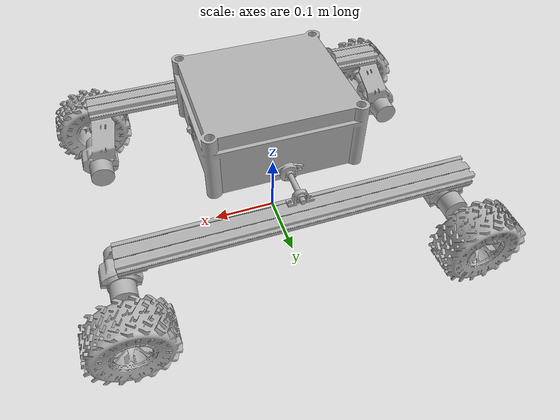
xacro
<?xml version="1.0" ?>
<robot name="navrover" xmlns:xacro="http://www.ros.org/wiki/xacro">

<xacro:include filename="$(find navrover_description)/urdf/materials.xacro" />
<xacro:include filename="$(find navrover_description)/urdf/navrover.trans" />
<xacro:include filename="$(find navrover_description)/urdf/navrover.gazebo" />
<xacro:include filename="$(find navrover_control)/description/ros2_control.xacro" />

<link name="base_link">
  <inertial>
    <origin xyz="0.009504858866791937 -0.002270281447422617 0.1951992873261795" rpy="0 0 0"/>
    <mass value="0.9518707421963939"/>
    <inertia ixx="0.005453" iyy="0.006479" izz="0.009221" ixy="8e-06" iyz="-2.3e-05" ixz="1.9e-05"/>
  </inertial>
  <visual>
    <origin xyz="0 0 0" rpy="0 0 0"/>
    <geometry>
      <mesh filename="file://$(find navrover_description)/meshes/base_link.stl" scale="0.001 0.001 0.001"/>
    </geometry>
    <material name="silver"/>
  </visual>
  <collision>
    <origin xyz="0 0 0" rpy="0 0 0"/>
    <geometry>
      <mesh filename="file://$(find navrover_description)/meshes/base_link.stl" scale="0.001 0.001 0.001"/>
    </geometry>
  </collision>
</link>

<link name="left_front_motor_1">
  <inertial>
    <origin xyz="0.0008910668948025613 -0.03289510779057839 -0.06734484283672734" rpy="0 0 0"/>
    <mass value="0.8027582890758764"/>
    <inertia ixx="0.000756" iyy="0.000377" izz="0.000565" ixy="1.3e-05" iyz="-4.8e-05" ixz="6.6e-05"/>
  </inertial>
  <visual>
    <origin xyz="-0.259316 -0.15026 -0.142476" rpy="0 0 0"/>
    <geometry>
      <mesh filename="file://$(find navrover_description)/meshes/left_front_motor_1.stl" scale="0.001 0.001 0.001"/>
    </geometry>
    <material name="silver"/>
  </visual>
  <collision>
    <origin xyz="-0.259316 -0.15026 -0.142476" rpy="0 0 0"/>
    <geometry>
      <mesh filename="file://$(find navrover_description)/meshes/left_front_motor_1.stl" scale="0.001 0.001 0.001"/>
    </geometry>
  </collision>
</link>

<link name="right_rear_motor_1">
  <inertial>
    <origin xyz="-0.000890443487994802 0.032894483907466535 -0.06734484283672845" rpy="0 0 0"/>
    <mass value="0.8027582890758764"/>
    <inertia ixx="0.000756" iyy="0.000377" izz="0.000565" ixy="1.3e-05" iyz="4.8e-05" ixz="-6.6e-05"/>
  </inertial>
  <visual>
    <origin xyz="0.240684 0.156507 -0.142476" rpy="0 0 0"/>
    <geometry>
      <mesh filename="file://$(find navrover_description)/meshes/right_rear_motor_1.stl" scale="0.001 0.001 0.001"/>
    </geometry>
    <material name="silver"/>
  </visual>
  <collision>
    <origin xyz="0.240684 0.156507 -0.142476" rpy="0 0 0"/>
    <geometry>
      <mesh filename="file://$(find navrover_description)/meshes/right_rear_motor_1.stl" scale="0.001 0.001 0.001"/>
    </geometry>
  </collision>
</link>

<link name="right_front_motor_1">
  <inertial>
    <origin xyz="0.0007239698752933288 0.032862866662436055 -0.06750730161649608" rpy="0 0 0"/>
    <mass value="0.8025906335235503"/>
    <inertia ixx="0.000756" iyy="0.000377" izz="0.000564" ixy="-1.3e-05" iyz="4.8e-05" ixz="6.5e-05"/>
  </inertial>
  <visual>
    <origin xyz="-0.259316 0.156507 -0.142476" rpy="0 0 0"/>
    <geometry>
      <mesh filename="file://$(find navrover_description)/meshes/right_front_motor_1.stl" scale="0.001 0.001 0.001"/>
    </geometry>
    <material name="silver"/>
  </visual>
  <collision>
    <origin xyz="-0.259316 0.156507 -0.142476" rpy="0 0 0"/>
    <geometry>
      <mesh filename="file://$(find navrover_description)/meshes/right_front_motor_1.stl" scale="0.001 0.001 0.001"/>
    </geometry>
  </collision>
</link>

<link name="right_rocker_arm_1">
  <inertial>
    <origin xyz="2.9281474290231146e-07 0.02209292999064974 -0.0201262955007033" rpy="0 0 0"/>
    <mass value="0.4257120617987387"/>
    <inertia ixx="8.7e-05" iyy="0.008739" izz="0.008786" ixy="-0.0" iyz="-1e-06" ixz="-0.0"/>
  </inertial>
  <visual>
    <origin xyz="-0.009316 0.178074 -0.172741" rpy="0 0 0"/>
    <geometry>
      <mesh filename="file://$(find navrover_description)/meshes/right_rocker_arm_1.stl" scale="0.001 0.001 0.001"/>
    </geometry>
    <material name="silver"/>
  </visual>
  <collision>
    <origin xyz="-0.009316 0.178074 -0.172741" rpy="0 0 0"/>
    <geometry>
      <mesh filename="file://$(find navrover_description)/meshes/right_rocker_arm_1.stl" scale="0.001 0.001 0.001"/>
    </geometry>
  </collision>
</link>

<link name="left_rocker_arm_1">
  <inertial>
    <origin xyz="3.324283158120944e-07 0.01853003784791249 -0.02012629550070319" rpy="0 0 0"/>
    <mass value="0.4257120617987387"/>
    <inertia ixx="8.7e-05" iyy="0.008739" izz="0.008786" ixy="-0.0" iyz="1e-06" ixz="0.0"/>
  </inertial>
  <visual>
    <origin xyz="-0.009316 -0.131926 -0.172741" rpy="0 0 0"/>
    <geometry>
      <mesh filename="file://$(find navrover_description)/meshes/left_rocker_arm_1.stl" scale="0.001 0.001 0.001"/>
    </geometry>
    <material name="silver"/>
  </visual>
  <collision>
    <origin xyz="-0.009316 -0.131926 -0.172741" rpy="0 0 0"/>
    <geometry>
      <mesh filename="file://$(find navrover_description)/meshes/left_rocker_arm_1.stl" scale="0.001 0.001 0.001"/>
    </geometry>
  </collision>
</link>

<link name="rover_camera_1">
  <inertial>
    <origin xyz="0.003554697181533076 -2.0100020046076236e-07 0.005792514392210929" rpy="0 0 0"/>
    <mass value="0.002153289793576474"/>
    <inertia ixx="0.0" iyy="0.0" izz="0.0" ixy="-0.0" iyz="-0.0" ixz="-0.0"/>
  </inertial>
  <visual>
    <origin xyz="-0.11748 0.003701 -0.19374" rpy="0 0 0"/>
    <geometry>
      <mesh filename="file://$(find navrover_description)/meshes/rover_camera_1.stl" scale="0.001 0.001 0.001"/>
    </geometry>
    <material name="silver"/>
  </visual>
  <collision>
    <origin xyz="-0.11748 0.003701 -0.19374" rpy="0 0 0"/>
    <geometry>
      <mesh filename="file://$(find navrover_description)/meshes/rover_camera_1.stl" scale="0.001 0.001 0.001"/>
    </geometry>
  </collision>
</link>

<link name="left_rear_motor_1">
  <inertial>
    <origin xyz="-0.0007233464684787139 -0.032863490545547894 -0.06750730161649704" rpy="0 0 0"/>
    <mass value="0.8025906335235503"/>
    <inertia ixx="0.000756" iyy="0.000377" izz="0.000564" ixy="-1.3e-05" iyz="-4.8e-05" ixz="-6.5e-05"/>
  </inertial>
  <visual>
    <origin xyz="0.240684 -0.15026 -0.142476" rpy="0 0 0"/>
    <geometry>
      <mesh filename="file://$(find navrover_description)/meshes/left_rear_motor_1.stl" scale="0.001 0.001 0.001"/>
    </geometry>
    <material name="silver"/>
  </visual>
  <collision>
    <origin xyz="0.240684 -0.15026 -0.142476" rpy="0 0 0"/>
    <geometry>
      <mesh filename="file://$(find navrover_description)/meshes/left_rear_motor_1.stl" scale="0.001 0.001 0.001"/>
    </geometry>
  </collision>
</link>

<link name="right_front_wheel_1">
  <inertial>
    <origin xyz="-2.4480071231791634e-06 -0.05304934910412809 3.45541559178264e-06" rpy="0 0 0"/>
    <mass value="0.10363845671616667"/>
    <inertia ixx="0.000149" iyy="0.000216" izz="0.000149" ixy="0.0" iyz="-0.0" ixz="-0.0"/>
  </inertial>
  <visual>
    <origin xyz="-0.262818 0.165429 -0.062925" rpy="0 0 0"/>
    <geometry>
      <mesh filename="file://$(find navrover_description)/meshes/right_front_wheel_1.stl" scale="0.001 0.001 0.001"/>
    </geometry>
    <material name="silver"/>
  </visual>
  <collision>
    <origin xyz="-0.262818 0.165429 -0.062925" rpy="0 0 0"/>
    <geometry>
      <mesh filename="file://$(find navrover_description)/meshes/right_front_wheel_1.stl" scale="0.001 0.001 0.001"/>
    </geometry>
  </collision>
</link>

<link name="right_rear_wheel_1">
  <inertial>
    <origin xyz="-2.1651424856328205e-06 -0.05305002932436376 3.4614773598007353e-06" rpy="0 0 0"/>
    <mass value="0.10363845671616667"/>
    <inertia ixx="0.000149" iyy="0.000216" izz="0.000149" ixy="0.0" iyz="-0.0" ixz="-0.0"/>
  </inertial>
  <visual>
    <origin xyz="0.245885 0.165394 -0.063543" rpy="0 0 0"/>
    <geometry>
      <mesh filename="file://$(find navrover_description)/meshes/right_rear_wheel_1.stl" scale="0.001 0.001 0.001"/>
    </geometry>
    <material name="silver"/>
  </visual>
  <collision>
    <origin xyz="0.245885 0.165394 -0.063543" rpy="0 0 0"/>
    <geometry>
      <mesh filename="file://$(find navrover_description)/meshes/right_rear_wheel_1.stl" scale="0.001 0.001 0.001"/>
    </geometry>
  </collision>
</link>

<link name="left_front_wheel_1">
  <inertial>
    <origin xyz="1.788549294334807e-06 0.053049405441251946 3.4614773610358585e-06" rpy="0 0 0"/>
    <mass value="0.10363845671616667"/>
    <inertia ixx="0.000149" iyy="0.000216" izz="0.000149" ixy="0.0" iyz="0.0" ixz="0.0"/>
  </inertial>
  <visual>
    <origin xyz="-0.264518 -0.159147 -0.063543" rpy="0 0 0"/>
    <geometry>
      <mesh filename="file://$(find navrover_description)/meshes/left_front_wheel_1.stl" scale="0.001 0.001 0.001"/>
    </geometry>
    <material name="silver"/>
  </visual>
  <collision>
    <origin xyz="-0.264518 -0.159147 -0.063543" rpy="0 0 0"/>
    <geometry>
      <mesh filename="file://$(find navrover_description)/meshes/left_front_wheel_1.stl" scale="0.001 0.001 0.001"/>
    </geometry>
  </collision>
</link>

<link name="left_rear_wheel_1">
  <inertial>
    <origin xyz="2.071413911980402e-06 0.053049725221015476 3.455415590880584e-06" rpy="0 0 0"/>
    <mass value="0.10363845671616667"/>
    <inertia ixx="0.000149" iyy="0.000216" izz="0.000149" ixy="0.0" iyz="0.0" ixz="0.0"/>
  </inertial>
  <visual>
    <origin xyz="0.244185 -0.159181 -0.062925" rpy="0 0 0"/>
    <geometry>
      <mesh filename="file://$(find navrover_description)/meshes/left_rear_wheel_1.stl" scale="0.001 0.001 0.001"/>
    </geometry>
    <material name="silver"/>
  </visual>
  <collision>
    <origin xyz="0.244185 -0.159181 -0.062925" rpy="0 0 0"/>
    <geometry>
      <mesh filename="file://$(find navrover_description)/meshes/left_rear_wheel_1.stl" scale="0.001 0.001 0.001"/>
    </geometry>
  </collision>
</link>

<joint name="left_front_motor_mount_joint" type="fixed">
  <origin xyz="0.25 0.018334 -0.030265" rpy="0 0 0"/>
  <parent link="left_rocker_arm_1"/>
  <child link="left_front_motor_1"/>
</joint>

<joint name="right_rear_motor_mount_joint" type="fixed">
  <origin xyz="-0.25 0.021567 -0.030265" rpy="0 0 0"/>
  <parent link="right_rocker_arm_1"/>
  <child link="right_rear_motor_1"/>
</joint>

<joint name="right_front_motor_mount_joint" type="fixed">
  <origin xyz="0.25 0.021567 -0.030265" rpy="0 0 0"/>
  <parent link="right_rocker_arm_1"/>
  <child link="right_front_motor_1"/>
</joint>

<joint name="right_rocker_arm_joint" type="revolute">
  <origin xyz="0.009316 -0.178074 0.172741" rpy="0 0 0"/>
  <parent link="base_link"/>
  <child link="right_rocker_arm_1"/>
  <axis xyz="0.0 1.0 0.0"/>
  <limit upper="0.261799" lower="-0.261799" effort="100" velocity="100"/>
  <dynamics friction = "1.0" damping = "0.1"/>
</joint>

<joint name="left_rocker_arm_joint" type="revolute">
  <origin xyz="0.009316 0.131926 0.172741" rpy="0 0 0"/>
  <parent link="base_link"/>
  <child link="left_rocker_arm_1"/>
  <axis xyz="0.0 1.0 0.0"/>
  <limit upper="0.261799" lower="-0.261799" effort="100" velocity="100"/>
  <dynamics friction = "1.0" damping = "0.1"/>
</joint>

<joint name="rover_front_camera_joint" type="fixed">
  <origin xyz="0.11748 -0.003701 0.19374" rpy="0 0 0"/>
  <parent link="base_link"/>
  <child link="rover_camera_1"/>
</joint>

<joint name="left_rear_motor_mount_joint" type="fixed">
  <origin xyz="-0.25 0.018334 -0.030265" rpy="0 0 0"/>
  <parent link="left_rocker_arm_1"/>
  <child link="left_rear_motor_1"/>
</joint>

<joint name="right_front_wheel_joint" type="continuous">
  <origin xyz="0.003502 -0.008922 -0.079551" rpy="0 0 0"/>
  <parent link="right_front_motor_1"/>
  <child link="right_front_wheel_1"/>
  <axis xyz="0 1 0"/>
  <dynamics damping="0.001" friction="0.01"/>
</joint>

<joint name="right_rear_wheel_joint" type="continuous">
  <origin xyz="-0.005201 -0.008887 -0.078933" rpy="0 0 0"/>
  <parent link="right_rear_motor_1"/>
  <child link="right_rear_wheel_1"/>
  <axis xyz="0.0 1.0 0.0"/>
  <dynamics damping="0.001" friction="0.01"/>
</joint>

<joint name="left_front_wheel_joint" type="continuous">
  <origin xyz="0.005202 0.008887 -0.078933" rpy="0 0 0"/>
  <parent link="left_front_motor_1"/>
  <child link="left_front_wheel_1"/>
  <axis xyz="0.0 1.0 0.0"/>
  <dynamics damping="0.001" friction="0.01"/>
</joint>

<joint name="left_rear_wheel_joint" type="continuous">
  <origin xyz="-0.003501 0.008921 -0.079551" rpy="0 0 0"/>
  <parent link="left_rear_motor_1"/>
  <child link="left_rear_wheel_1"/>
  <axis xyz="0.0 1.0 0.0"/>
  <dynamics damping="0.001" friction="0.01"/>
</joint>

</robot>

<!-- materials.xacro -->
<robot name="navrover" xmlns:xacro="http://www.ros.org/wiki/xacro" >

<material name="silver">
  <color rgba="0.700 0.700 0.700 1.000"/>
</material>

</robot>

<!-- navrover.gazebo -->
<robot name="navrover" xmlns:xacro="http://www.ros.org/wiki/xacro" >

<xacro:property name="body_color" value="Gazebo/White" />
<xacro:property name="motor_color" value="Gazebo/Silver" />
<xacro:property name="wheel_color" value="Gazebo/Black" />
<xacro:property name="camera_color" value="Gazebo/Green" />

  <gazebo reference="base_link">
    <material>${body_color}</material>
    <mu1>0.2</mu1>
    <mu2>0.2</mu2>
    <self_collide>true</self_collide>
    <gravity>true</gravity>
  </gazebo>

  <xacro:macro name="wheel_properties" params="prefix">
    <gazebo reference="${prefix}_wheel_1">
      <material>${wheel_color}</material>
      <mu1>1.5</mu1>
      <mu2>1.5</mu2>
      <kp>500000.0</kp>
      <kd>100.0</kd>
      <fdir1>1 0 0</fdir1>
      <minDepth>0.005</minDepth>
      <maxVel>1.5</maxVel>
    </gazebo>
  </xacro:macro>

  <xacro:wheel_properties prefix="right_front" />
  <xacro:wheel_properties prefix="right_rear" />
  <xacro:wheel_properties prefix="left_front" />
  <xacro:wheel_properties prefix="left_rear" />

  <xacro:macro name="motor_properties" params="prefix">
    <gazebo reference="${prefix}_motor_1">
      <material>${motor_color}</material>
      <mu1>0.2</mu1>
      <mu2>0.2</mu2>
      <self_collide>true</self_collide>
    </gazebo>
  </xacro:macro>

  <xacro:motor_properties prefix="left_front" />
  <xacro:motor_properties prefix="right_rear" />
  <xacro:motor_properties prefix="right_front" />
  <xacro:motor_properties prefix="left_rear" />

  <gazebo reference="right_rocker_arm_1">
    <material>${motor_color}</material>
    <mu1>0.2</mu1>
    <mu2>0.2</mu2>
    <self_collide>true</self_collide>
  </gazebo>

  <gazebo reference="left_rocker_arm_1">
    <material>${motor_color}</material>
    <mu1>0.2</mu1>
    <mu2>0.2</mu2>
    <self_collide>true</self_collide>
  </gazebo>

  <gazebo reference="rover_camera_1">
    <material>${camera_color}</material>
    <mu1>0.2</mu1>
    <mu2>0.2</mu2>
    <self_collide>true</self_collide>
  </gazebo>

  <gazebo>
    <plugin filename="libleo_gz_differential_plugin.so" name="leo_gz::DifferentialSystem">
      <jointA>left_rocker_arm_joint</jointA>
      <jointB>right_rocker_arm_joint</jointB>
      <forceConstant>50.0</forceConstant>
    </plugin>
  </gazebo>

  <gazebo>

    <plugin filename="gz-sim-joint-state-publisher-system" name="gz::sim::systems::JointStatePublisher">
      <topic>joint_states</topic>
      <publish_rate>50</publish_rate>

      <joint_name>left_front_wheel_joint</joint_name>
      <joint_name>left_rear_wheel_joint</joint_name>
      <joint_name>right_front_wheel_joint</joint_name>
      <joint_name>right_rear_wheel_joint</joint_name>

      <joint_name>right_rocker_arm_joint</joint_name>
      <joint_name>left_rocker_arm_joint</joint_name>
    </plugin>

    <plugin filename="gz-sim-joint-controller-system" name="gz::sim::systems::JointController">
      <joint_name>left_front_wheel_joint</joint_name>
      <joint_name>left_rear_wheel_joint</joint_name>
      <joint_name>right_front_wheel_joint</joint_name>
      <joint_name>right_rear_wheel_joint</joint_name>
      <use_velocity_commands>true</use_velocity_commands>
    </plugin>

    <plugin filename="gz-sim-diff-drive-system" name="gz::sim::systems::DiffDrive">

      <left_joint>left_front_wheel_joint</left_joint>
      <left_joint>left_rear_wheel_joint</left_joint>
      <right_joint>right_front_wheel_joint</right_joint>
      <right_joint>right_rear_wheel_joint</right_joint>

      <wheel_separation>0.324328</wheel_separation>
      <wheel_radius>0.065</wheel_radius>

      <odom_publish_frequency>50</odom_publish_frequency>
      <max_linear_velocity>1.5</max_linear_velocity>
      <min_linear_velocity>-1.5</min_linear_velocity>
      <max_angular_velocity>6.0</max_angular_velocity>
      <min_angular_velocity>-6.0</min_angular_velocity>
      <max_wheel_acceleration>10.0</max_wheel_acceleration>
      <min_wheel_acceleration>-10.0</min_wheel_acceleration>
      <max_wheel_torque>2.767</max_wheel_torque>

      <topic>cmd_vel</topic>
      <publish_odom>true</publish_odom>
      <publish_odom_tf>true</publish_odom_tf>
      <publish_wheel_tf>false</publish_wheel_tf>
      <odometry_frame>odom</odometry_frame>
      <robot_base_frame>base_link</robot_base_frame>
    </plugin>
  </gazebo>

</robot>
